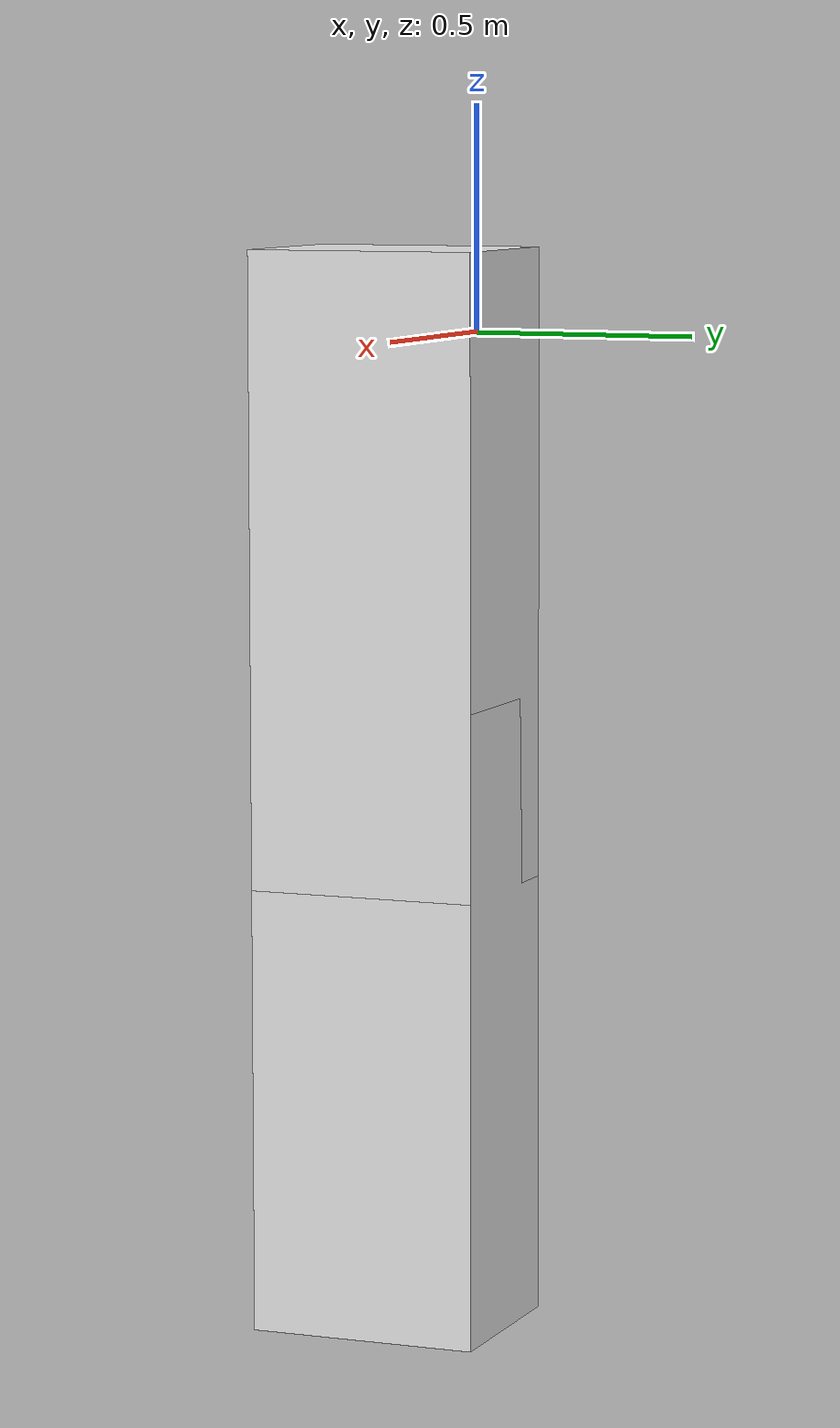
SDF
<?xml version="1.0" ?>
<sdf version="1.7">
    <model name="one">
			<static>true</static>

			<!-- creating a 7 segment display -->

			<link name="b">
				<pose>0.4785 0 -0.4785 0 1.5707 0</pose>
				<visual name="visual">
					<geometry>
						<box>
							<size>1.357 0.5 0.4</size>
						</box>
					</geometry>
					<material>
						<script>
							<uri>file://media/materials/scripts/gazebo.material</uri>
							<name>Gazebo/White</name>
						</script>
					</material>
				</visual>
			</link>

			<link name="c">
				<pose>0.4785 0 -1.4355 0 1.5707 0</pose>
				<visual name="visual">
					<geometry>
						<box>
							<size>1.357 0.5 0.4</size>
						</box>
					</geometry>
					<material>
						<script>
							<uri>file://media/materials/scripts/gazebo.material</uri>
							<name>Gazebo/White</name>
						</script>
					</material>
				</visual>
			</link>

    </model>
</sdf>
